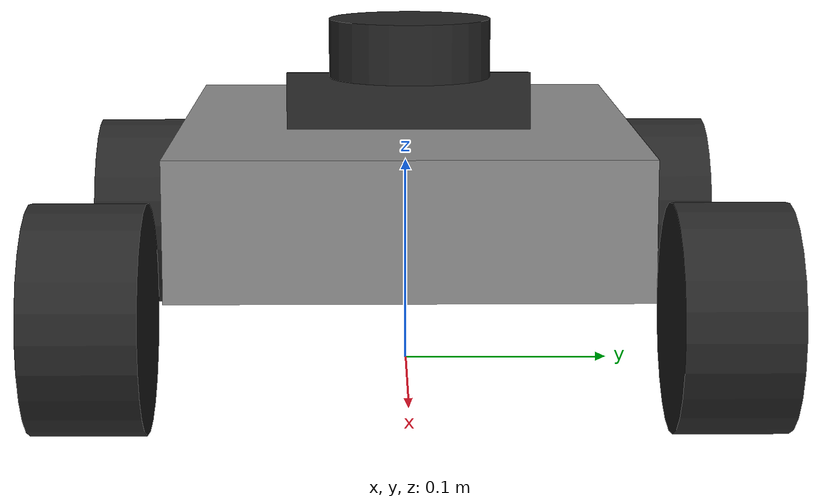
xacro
<?xml version="1.0"?>
<robot name="open_rover" xmlns:xacro="http://www.ros.org/wiki/xacro">

  <!-- ============================ Units ============================ -->
  <xacro:property name="inch"  value="0.0254"/>
  <xacro:property name="deg" value="${pi/180.0}"/>

  <!-- ======================== Base geometry ======================== -->
  <xacro:property name="wheel_diameter" value="${4.0*inch}"/>
  <xacro:property name="wheel_radius"   value="${wheel_diameter/2}"/>
  <xacro:property name="wheel_width"    value="${2.0*inch}"/>
  <!-- Holonomic (omni-directional) base. Wheels are drawn parallel to the body
       sides; set to 45 deg (pi/4) only if the omni wheels are mounted diagonally (X-drive). -->
  <xacro:property name="wheel_yaw"      value="0.0"/>

  <xacro:property name="robot_length" value="${15.0*inch}"/>  <!-- outer front wheel to outer rear wheel -->
  <xacro:property name="robot_width"  value="${13.0*inch}"/>  <!-- outer face L wheel to outer face R wheel -->

  <xacro:property name="front_edge_x" value="${ robot_length/2}"/>
  <xacro:property name="rear_edge_x"  value="${-robot_length/2}"/>

  <xacro:property name="wheel_x" value="${robot_length/2 - wheel_radius}"/>
  <xacro:property name="wheel_y" value="${robot_width/2 - wheel_width/2}"/>
  <xacro:property name="axle_z"  value="${wheel_radius}"/>

  <xacro:property name="base_plate_z" value="${2.25*inch}"/>  <!-- floor to bottom of base plate -->
  <xacro:property name="top_plate_z"  value="${4.75*inch}"/>  <!-- floor to top of top plate -->

  <!-- Chassis box (visual only) -->
  <xacro:property name="chassis_length" value="${2*wheel_x}"/>                          <!-- ASSUMED -->
  <xacro:property name="chassis_width"  value="${robot_width - 2*wheel_width - 0.5*inch}"/> <!-- ASSUMED -->
  <xacro:property name="chassis_height" value="${top_plate_z - base_plate_z}"/>

  <!-- ============================ Lidar ============================ -->
  <!-- Center of lidar 2.5 in behind the front edge of the front wheels -->
  <xacro:property name="lidar_x"     value="${front_edge_x - 2.5*inch}"/>
  <xacro:property name="lidar_y"     value="0.0"/>                          <!-- ASSUMED: on centerline -->
  <xacro:property name="lidar_top_z" value="${(7.0 + 2.0/16.0)*inch}"/>
  <xacro:property name="lidar_body_h" value="${1.0*inch}"/>
  <xacro:property name="lidar_body_d" value="${2.75*inch}"/>
  <!-- Scan plane assumed at mid-height of the body -->
  <xacro:property name="lidar_z"     value="${lidar_top_z - lidar_body_h/2}"/> <!-- ASSUMED -->
  <xacro:property name="lidar_yaw"   value="${pi}"/>

  <!-- ============================ OAK-D ============================ -->
  <xacro:property name="oak_x"     value="${front_edge_x - 4.25*inch}"/>
  <xacro:property name="oak_y"     value="0.0"/>                    <!-- ASSUMED: on centerline -->
  <xacro:property name="oak_z"     value="${top_plate_z + 0.75*inch}"/> <!-- ASSUMED: needs measuring -->
  <!-- 6 deg UP. In ROS, positive pitch tilts x downward, so up is negative. -->
  <xacro:property name="oak_pitch" value="${-6.0*deg}"/>

  <!-- ======================= Flight controller ===================== -->
  <xacro:property name="fc_x"   value="${rear_edge_x + 2.5*inch}"/>
  <xacro:property name="fc_y"   value="0.0"/>                       <!-- on centerline -->
  <xacro:property name="fc_z"   value="${top_plate_z + 0.25*inch}"/>  <!-- ASSUMED: needs measuring -->
  <xacro:property name="fc_yaw" value="0.0"/>                       <!-- arrow points +x (forward) -->

  <!-- ==================== Blue Robotics side cams ================== -->
  <xacro:property name="side_cam_x" value="0.0"/>                   <!-- ASSUMED: needs measuring -->
  <xacro:property name="side_cam_y" value="${chassis_width/2}"/>    <!-- ASSUMED: at chassis edge -->
  <xacro:property name="side_cam_z" value="${(base_plate_z + top_plate_z)/2}"/> <!-- ASSUMED -->
  <!-- ASSUMED: each camera looks straight outward (left = +90 deg, right = -90 deg) -->

  <!-- ========================== Materials ========================== -->
  <material name="dark">  <color rgba="0.15 0.15 0.15 1.0"/></material>
  <material name="grey">  <color rgba="0.55 0.55 0.55 1.0"/></material>
  <material name="blue">  <color rgba="0.10 0.35 0.80 1.0"/></material>
  <material name="orange"><color rgba="0.95 0.50 0.10 1.0"/></material>

  <!-- ============================ Links ============================ -->
  <link name="base_footprint"/>

  <link name="base_link">
    <visual>
      <!-- chassis box sits between the plates; base_link is at axle height -->
      <origin xyz="0 0 ${(base_plate_z + top_plate_z)/2 - axle_z}" rpy="0 0 0"/>
      <geometry><box size="${chassis_length} ${chassis_width} ${chassis_height}"/></geometry>
      <material name="grey"/>
    </visual>
  </link>

  <joint name="base_footprint_joint" type="fixed">
    <parent link="base_footprint"/>
    <child  link="base_link"/>
    <origin xyz="0 0 ${axle_z}" rpy="0 0 0"/>
  </joint>

  <!-- Wheels: fixed joints, since there are no encoders / joint states.
       (Continuous joints would need a joint_state_publisher to appear in TF.) -->
  <xacro:macro name="wheel" params="name x y yaw">
    <link name="${name}_wheel">
      <visual>
        <origin xyz="0 0 0" rpy="${pi/2} 0 0"/>
        <geometry><cylinder radius="${wheel_radius}" length="${wheel_width}"/></geometry>
        <material name="dark"/>
      </visual>
    </link>
    <joint name="${name}_wheel_joint" type="fixed">
      <parent link="base_link"/>
      <child  link="${name}_wheel"/>
      <origin xyz="${x} ${y} 0" rpy="0 0 ${yaw}"/>
    </joint>
  </xacro:macro>

  <xacro:wheel name="front_left"  x="${ wheel_x}" y="${ wheel_y}" yaw="${-wheel_yaw}"/>
  <xacro:wheel name="front_right" x="${ wheel_x}" y="${-wheel_y}" yaw="${ wheel_yaw}"/>
  <xacro:wheel name="rear_left"   x="${-wheel_x}" y="${ wheel_y}" yaw="${ wheel_yaw}"/>
  <xacro:wheel name="rear_right"  x="${-wheel_x}" y="${-wheel_y}" yaw="${-wheel_yaw}"/>

  <!-- Lidar. Frame name "laser" matches sllidar_ros2's frame_id. -->
  <link name="laser">
    <visual>
      <!-- frame origin is the assumed scan plane at mid-body -->
      <origin xyz="0 0 0" rpy="0 0 0"/>
      <geometry><cylinder radius="${lidar_body_d/2}" length="${lidar_body_h}"/></geometry>
      <material name="dark"/>
    </visual>
  </link>
  <joint name="laser_joint" type="fixed">
    <parent link="base_link"/>
    <child  link="laser"/>
    <origin xyz="${lidar_x} ${lidar_y} ${lidar_z - axle_z}" rpy="0 0 ${lidar_yaw}"/>
  </joint>

  <!-- IMU (flight controller). BaseDriver must stamp its Imu msgs with this frame. -->
  <link name="imu_link">
    <visual>
      <geometry><box size="${1.4*inch} ${1.4*inch} ${0.3*inch}"/></geometry>
      <material name="blue"/>
    </visual>
  </link>
  <joint name="imu_joint" type="fixed">
    <parent link="base_link"/>
    <child  link="imu_link"/>
    <origin xyz="${fc_x} ${fc_y} ${fc_z - axle_z}" rpy="0 0 ${fc_yaw}"/>
  </joint>

  <!-- OAK-D mount point. Point the depthai-ros driver's parent frame at "oak_link";
       the driver publishes its own sensor / optical frames under it. -->
  <link name="oak_link">
    <visual>
      <geometry><box size="${1.2*inch} ${4.3*inch} ${1.0*inch}"/></geometry>
      <material name="dark"/>
    </visual>
  </link>
  <joint name="oak_joint" type="fixed">
    <parent link="base_link"/>
    <child  link="oak_link"/>
    <origin xyz="${oak_x} ${oak_y} ${oak_z - axle_z}" rpy="0 ${oak_pitch} 0"/>
  </joint>

  <!-- Blue Robotics side cameras, each with a ROS optical frame
       (z forward, x right, y down) for image topics. -->
  <xacro:macro name="side_camera" params="name y yaw">
    <link name="${name}_camera_link">
      <visual>
        <origin xyz="0 0 0" rpy="0 ${pi/2} 0"/>
        <geometry><cylinder radius="${0.6*inch}" length="${0.8*inch}"/></geometry>
        <material name="orange"/>
      </visual>
    </link>
    <joint name="${name}_camera_joint" type="fixed">
      <parent link="base_link"/>
      <child  link="${name}_camera_link"/>
      <origin xyz="${side_cam_x} ${y} ${side_cam_z - axle_z}" rpy="0 0 ${yaw}"/>
    </joint>
    <link name="${name}_camera_optical_frame"/>
    <joint name="${name}_camera_optical_joint" type="fixed">
      <parent link="${name}_camera_link"/>
      <child  link="${name}_camera_optical_frame"/>
      <origin xyz="0 0 0" rpy="${-pi/2} 0 ${-pi/2}"/>
    </joint>
  </xacro:macro>

  <xacro:side_camera name="left"  y="${ side_cam_y}" yaw="${ pi/2}"/>
  <xacro:side_camera name="right" y="${-side_cam_y}" yaw="${-pi/2}"/>

</robot>
